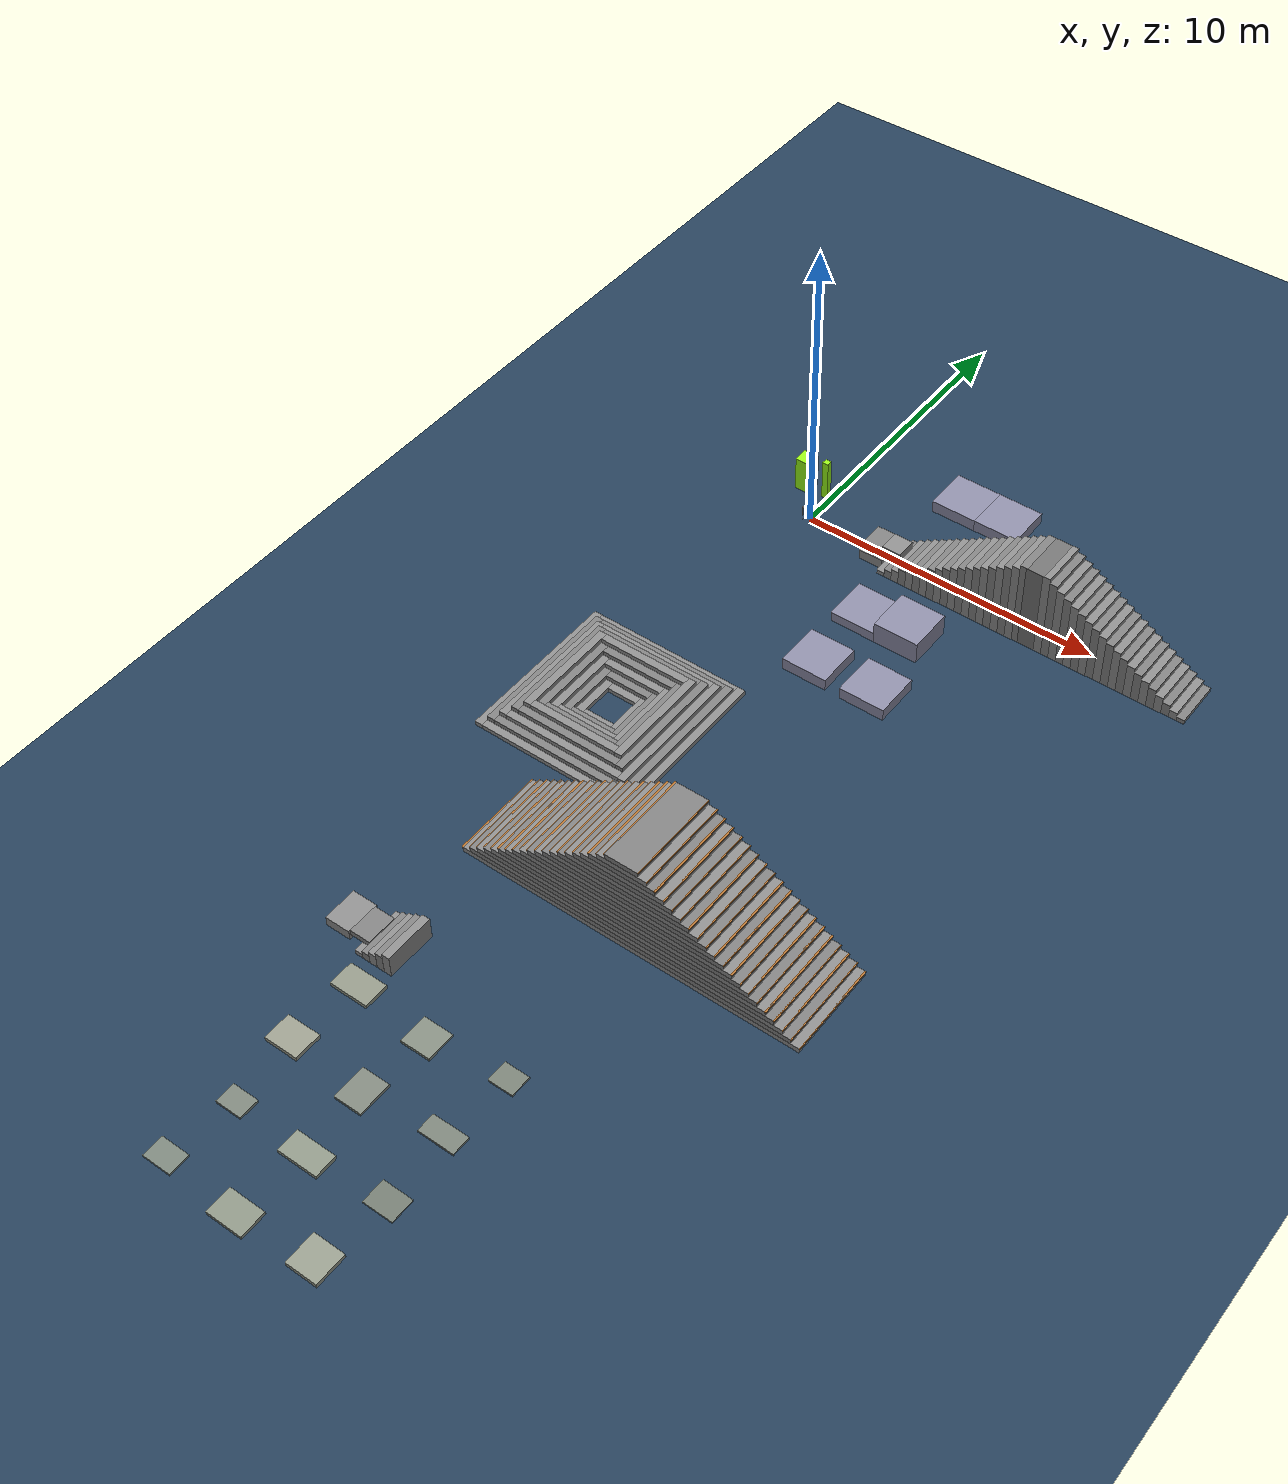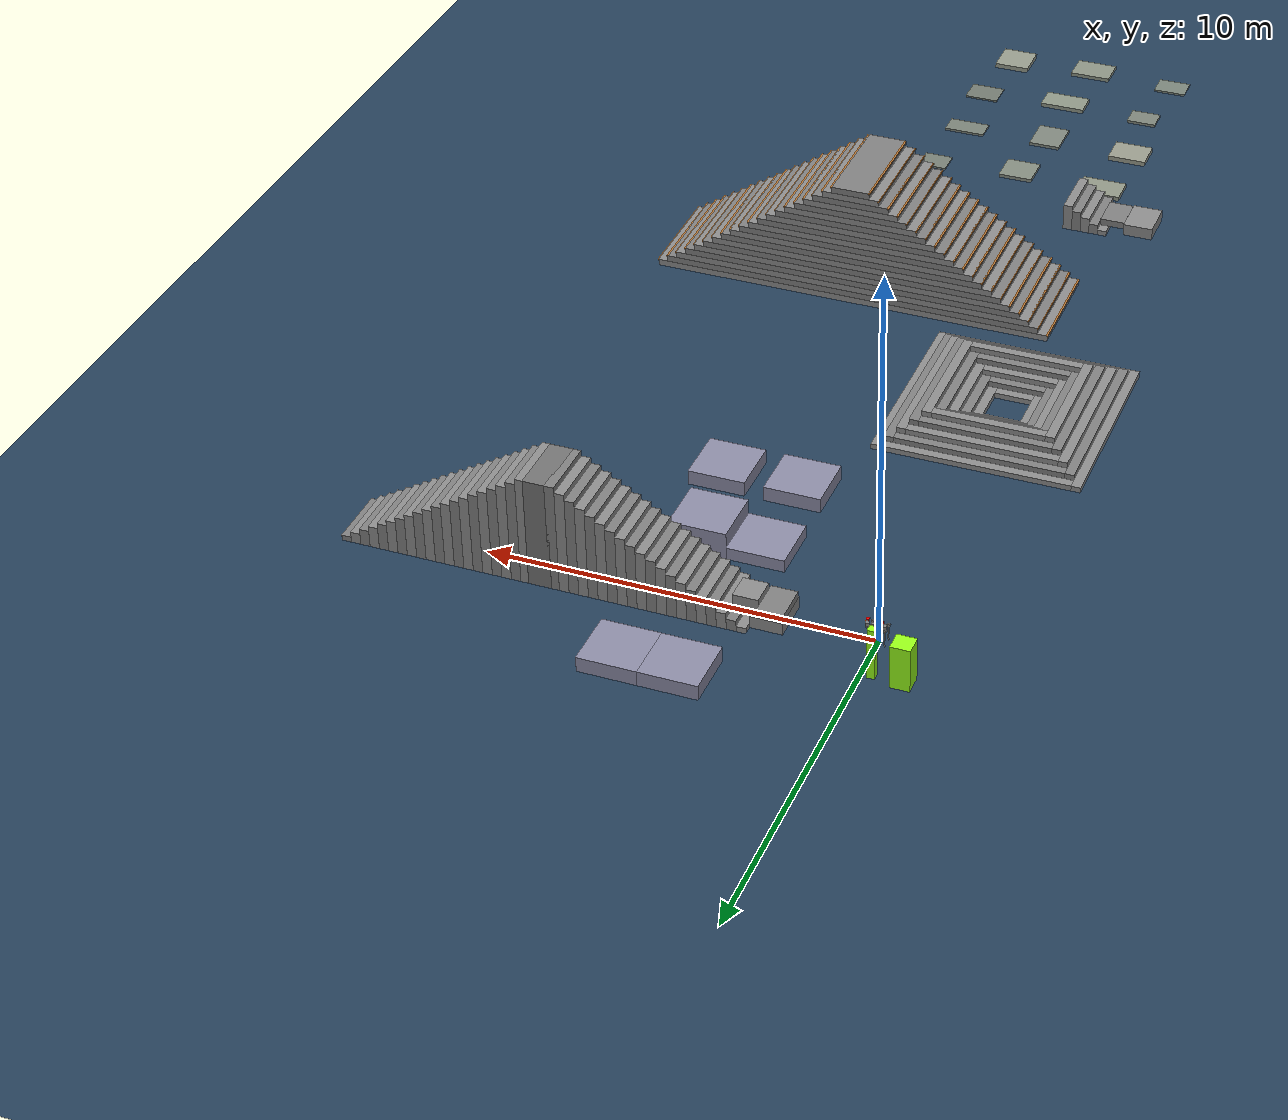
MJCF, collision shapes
<mujoco model="go2 scene">
  <include file="go2.xml"/>

  <statistic center="0 0 0.1" extent="0.8"/>

  <visual>
    <headlight diffuse="0.6 0.6 0.6" ambient="0.3 0.3 0.3" specular="0 0 0"/>
    <rgba haze="0.15 0.25 0.35 1"/>
    <global azimuth="-130" elevation="-20"/>
  </visual>

  <asset>
    <texture type="skybox" builtin="gradient" rgb1="0.3 0.5 0.7" rgb2="0 0 0" width="512" height="3072"/>
    <texture type="2d" name="groundplane" builtin="checker" mark="edge" rgb1="0.2 0.3 0.4" rgb2="0.1 0.2 0.3"
      markrgb="0.8 0.8 0.8" width="300" height="300"/>
    <material name="groundplane" texture="groundplane" texuniform="true" texrepeat="5 5" reflectance="0.2"/>
  </asset>

  <worldbody>
    <light pos="0 0 1.5" dir="0 0 -1" directional="true"/>
    <geom name="floor" size="0 0 0.05" type="plane" material="groundplane" friction="2.0 0.005 0.0001"/>

    <geom name="obst1" pos="-1.0 1.2 0.15" type="box" size="0.25 0.25 1.0" rgba="0.6 1.0 0.1 1"/>
    <geom name="obst2" pos="-0.25 1.2 0.15" type="box" size="0.1 0.1 1.2" rgba="0.6 1.0 0.1 1"/>

    <!-- Boxes group: move/rotate by changing this body's pos/euler -->
    <body name="boxes" pos="3.75 -2.5 -0.1">
      <geom name="box1" pos="0 0 0.0" type="box" size="0.75 0.75 0.4" rgba="0.55 0.55 0.65 1"/>
      <geom name="box2" pos="1.5 0 0.4" type="box" size="0.75 0.75 0.4" rgba="0.55 0.55 0.65 1"/>
    </body>

    <body name="boxes_overhang" pos="3.75 3.0 0.5">
      <geom name="box3" pos="0 0 0.0" type="box" size="0.75 0.75 0.2" rgba="0.55 0.55 0.65 1"/>
      <geom name="box4" pos="1.5 0 0.0" type="box" size="0.75 0.75 0.2" rgba="0.55 0.55 0.65 1"/>
    </body>

    <!-- Gap terrain group: two platforms with a 0.5m gap between them -->
    <body name="gap" pos="3.75 -5 0">
      <geom name="gap1" pos="0 0 0.2" type="box" size="0.75 0.75 0.2" rgba="0.55 0.55 0.65 1" friction="20.0 0.1 0.0001"/>
      <geom name="gap2" pos="2.0 0 0.2" type="box" size="0.75 0.75 0.2" rgba="0.55 0.55 0.65 1" friction="20.0 0.1 0.0001"/>
    </body>

    <!-- Concentric stairs: 0.25m treads climb a pyramid, then descend into its center -->
    <body name="pyramid_stairs" pos="0 -10 0">
      <!-- Outer pyramid: five 0.15m rises -->
      <geom name="pyramid_outer_1_left"   pos="-2.625 0 0.075" type="box" size="0.125 2.75 0.075" rgba="0.55 0.55 0.55 1" friction="3.0 0.005 0.0001"/>
      <geom name="pyramid_outer_1_right"  pos="2.625 0 0.075"  type="box" size="0.125 2.75 0.075" rgba="0.55 0.55 0.55 1" friction="3.0 0.005 0.0001"/>
      <geom name="pyramid_outer_1_front"  pos="0 -2.625 0.075" type="box" size="2.5 0.125 0.075"  rgba="0.55 0.55 0.55 1" friction="3.0 0.005 0.0001"/>
      <geom name="pyramid_outer_1_back"   pos="0 2.625 0.075"  type="box" size="2.5 0.125 0.075"  rgba="0.55 0.55 0.55 1" friction="3.0 0.005 0.0001"/>

      <geom name="pyramid_outer_2_left"   pos="-2.375 0 0.15" type="box" size="0.125 2.5 0.15" rgba="0.50 0.50 0.50 1" friction="3.0 0.005 0.0001"/>
      <geom name="pyramid_outer_2_right"  pos="2.375 0 0.15"  type="box" size="0.125 2.5 0.15" rgba="0.50 0.50 0.50 1" friction="3.0 0.005 0.0001"/>
      <geom name="pyramid_outer_2_front"  pos="0 -2.375 0.15" type="box" size="2.25 0.125 0.15" rgba="0.50 0.50 0.50 1" friction="3.0 0.005 0.0001"/>
      <geom name="pyramid_outer_2_back"   pos="0 2.375 0.15"  type="box" size="2.25 0.125 0.15" rgba="0.50 0.50 0.50 1" friction="3.0 0.005 0.0001"/>

      <geom name="pyramid_outer_3_left"   pos="-2.125 0 0.225" type="box" size="0.125 2.25 0.225" rgba="0.55 0.55 0.55 1" friction="3.0 0.005 0.0001"/>
      <geom name="pyramid_outer_3_right"  pos="2.125 0 0.225"  type="box" size="0.125 2.25 0.225" rgba="0.55 0.55 0.55 1" friction="3.0 0.005 0.0001"/>
      <geom name="pyramid_outer_3_front"  pos="0 -2.125 0.225" type="box" size="2.0 0.125 0.225"  rgba="0.55 0.55 0.55 1" friction="3.0 0.005 0.0001"/>
      <geom name="pyramid_outer_3_back"   pos="0 2.125 0.225"  type="box" size="2.0 0.125 0.225"  rgba="0.55 0.55 0.55 1" friction="3.0 0.005 0.0001"/>

      <geom name="pyramid_outer_4_left"   pos="-1.875 0 0.3" type="box" size="0.125 2.0 0.3" rgba="0.50 0.50 0.50 1" friction="3.0 0.005 0.0001"/>
      <geom name="pyramid_outer_4_right"  pos="1.875 0 0.3"  type="box" size="0.125 2.0 0.3" rgba="0.50 0.50 0.50 1" friction="3.0 0.005 0.0001"/>
      <geom name="pyramid_outer_4_front"  pos="0 -1.875 0.3" type="box" size="1.75 0.125 0.3" rgba="0.50 0.50 0.50 1" friction="3.0 0.005 0.0001"/>
      <geom name="pyramid_outer_4_back"   pos="0 1.875 0.3"  type="box" size="1.75 0.125 0.3" rgba="0.50 0.50 0.50 1" friction="3.0 0.005 0.0001"/>

      <geom name="pyramid_outer_5_left"   pos="-1.625 0 0.375" type="box" size="0.125 1.75 0.375" rgba="0.55 0.55 0.55 1" friction="3.0 0.005 0.0001"/>
      <geom name="pyramid_outer_5_right"  pos="1.625 0 0.375"  type="box" size="0.125 1.75 0.375" rgba="0.55 0.55 0.55 1" friction="3.0 0.005 0.0001"/>
      <geom name="pyramid_outer_5_front"  pos="0 -1.625 0.375" type="box" size="1.5 0.125 0.375"  rgba="0.55 0.55 0.55 1" friction="3.0 0.005 0.0001"/>
      <geom name="pyramid_outer_5_back"   pos="0 1.625 0.375"  type="box" size="1.5 0.125 0.375"  rgba="0.55 0.55 0.55 1" friction="3.0 0.005 0.0001"/>

      <!-- Inverted pyramid: five 0.15m drops toward the ground-level center -->
      <geom name="pyramid_inner_1_left"   pos="-1.375 0 0.3" type="box" size="0.125 1.5 0.3" rgba="0.50 0.50 0.50 1" friction="3.0 0.005 0.0001"/>
      <geom name="pyramid_inner_1_right"  pos="1.375 0 0.3"  type="box" size="0.125 1.5 0.3" rgba="0.50 0.50 0.50 1" friction="3.0 0.005 0.0001"/>
      <geom name="pyramid_inner_1_front"  pos="0 -1.375 0.3" type="box" size="1.25 0.125 0.3" rgba="0.50 0.50 0.50 1" friction="3.0 0.005 0.0001"/>
      <geom name="pyramid_inner_1_back"   pos="0 1.375 0.3"  type="box" size="1.25 0.125 0.3" rgba="0.50 0.50 0.50 1" friction="3.0 0.005 0.0001"/>

      <geom name="pyramid_inner_2_left"   pos="-1.125 0 0.225" type="box" size="0.125 1.25 0.225" rgba="0.55 0.55 0.55 1" friction="3.0 0.005 0.0001"/>
      <geom name="pyramid_inner_2_right"  pos="1.125 0 0.225"  type="box" size="0.125 1.25 0.225" rgba="0.55 0.55 0.55 1" friction="3.0 0.005 0.0001"/>
      <geom name="pyramid_inner_2_front"  pos="0 -1.125 0.225" type="box" size="1.0 0.125 0.225"  rgba="0.55 0.55 0.55 1" friction="3.0 0.005 0.0001"/>
      <geom name="pyramid_inner_2_back"   pos="0 1.125 0.225"  type="box" size="1.0 0.125 0.225"  rgba="0.55 0.55 0.55 1" friction="3.0 0.005 0.0001"/>

      <geom name="pyramid_inner_3_left"   pos="-0.875 0 0.15" type="box" size="0.125 1.0 0.15" rgba="0.50 0.50 0.50 1" friction="3.0 0.005 0.0001"/>
      <geom name="pyramid_inner_3_right"  pos="0.875 0 0.15"  type="box" size="0.125 1.0 0.15" rgba="0.50 0.50 0.50 1" friction="3.0 0.005 0.0001"/>
      <geom name="pyramid_inner_3_front"  pos="0 -0.875 0.15" type="box" size="0.75 0.125 0.15" rgba="0.50 0.50 0.50 1" friction="3.0 0.005 0.0001"/>
      <geom name="pyramid_inner_3_back"   pos="0 0.875 0.15"  type="box" size="0.75 0.125 0.15" rgba="0.50 0.50 0.50 1" friction="3.0 0.005 0.0001"/>

      <geom name="pyramid_inner_4_left"   pos="-0.625 0 0.075" type="box" size="0.125 0.75 0.075" rgba="0.55 0.55 0.55 1" friction="3.0 0.005 0.0001"/>
      <geom name="pyramid_inner_4_right"  pos="0.625 0 0.075"  type="box" size="0.125 0.75 0.075" rgba="0.55 0.55 0.55 1" friction="3.0 0.005 0.0001"/>
      <geom name="pyramid_inner_4_front"  pos="0 -0.625 0.075" type="box" size="0.5 0.125 0.075"  rgba="0.55 0.55 0.55 1" friction="3.0 0.005 0.0001"/>
      <geom name="pyramid_inner_4_back"   pos="0 0.625 0.075"  type="box" size="0.5 0.125 0.075"  rgba="0.55 0.55 0.55 1" friction="3.0 0.005 0.0001"/>
    </body>

    <!-- 20 steps up/down: 0.29m effective depth, 0.175m rise, 3m width -->
    <body name="bumped_stairs" pos="0 -15 0">
      <!-- Structural slabs: 0.265m riser spacing plus 0.025m bump overhang -->
      <geom name="bumped_slab_1" pos="5.5650 0 0.0875" type="box" size="5.5650 1.5 0.0875" rgba="0.55 0.55 0.55 1" friction="3.0 0.005 0.0001"/>
      <geom name="bumped_slab_2" pos="5.5650 0 0.2625" type="box" size="5.3000 1.5 0.0875" rgba="0.50 0.50 0.50 1" friction="3.0 0.005 0.0001"/>
      <geom name="bumped_slab_3" pos="5.5650 0 0.4375" type="box" size="5.0350 1.5 0.0875" rgba="0.55 0.55 0.55 1" friction="3.0 0.005 0.0001"/>
      <geom name="bumped_slab_4" pos="5.5650 0 0.6125" type="box" size="4.7700 1.5 0.0875" rgba="0.50 0.50 0.50 1" friction="3.0 0.005 0.0001"/>
      <geom name="bumped_slab_5" pos="5.5650 0 0.7875" type="box" size="4.5050 1.5 0.0875" rgba="0.55 0.55 0.55 1" friction="3.0 0.005 0.0001"/>
      <geom name="bumped_slab_6" pos="5.5650 0 0.9625" type="box" size="4.2400 1.5 0.0875" rgba="0.50 0.50 0.50 1" friction="3.0 0.005 0.0001"/>
      <geom name="bumped_slab_7" pos="5.5650 0 1.1375" type="box" size="3.9750 1.5 0.0875" rgba="0.55 0.55 0.55 1" friction="3.0 0.005 0.0001"/>
      <geom name="bumped_slab_8" pos="5.5650 0 1.3125" type="box" size="3.7100 1.5 0.0875" rgba="0.50 0.50 0.50 1" friction="3.0 0.005 0.0001"/>
      <geom name="bumped_slab_9" pos="5.5650 0 1.4875" type="box" size="3.4450 1.5 0.0875" rgba="0.55 0.55 0.55 1" friction="3.0 0.005 0.0001"/>
      <geom name="bumped_slab_10" pos="5.5650 0 1.6625" type="box" size="3.1800 1.5 0.0875" rgba="0.50 0.50 0.50 1" friction="3.0 0.005 0.0001"/>
      <geom name="bumped_slab_11" pos="5.5650 0 1.8375" type="box" size="2.9150 1.5 0.0875" rgba="0.55 0.55 0.55 1" friction="3.0 0.005 0.0001"/>
      <geom name="bumped_slab_12" pos="5.5650 0 2.0125" type="box" size="2.6500 1.5 0.0875" rgba="0.50 0.50 0.50 1" friction="3.0 0.005 0.0001"/>
      <geom name="bumped_slab_13" pos="5.5650 0 2.1875" type="box" size="2.3850 1.5 0.0875" rgba="0.55 0.55 0.55 1" friction="3.0 0.005 0.0001"/>
      <geom name="bumped_slab_14" pos="5.5650 0 2.3625" type="box" size="2.1200 1.5 0.0875" rgba="0.50 0.50 0.50 1" friction="3.0 0.005 0.0001"/>
      <geom name="bumped_slab_15" pos="5.5650 0 2.5375" type="box" size="1.8550 1.5 0.0875" rgba="0.55 0.55 0.55 1" friction="3.0 0.005 0.0001"/>
      <geom name="bumped_slab_16" pos="5.5650 0 2.7125" type="box" size="1.5900 1.5 0.0875" rgba="0.50 0.50 0.50 1" friction="3.0 0.005 0.0001"/>
      <geom name="bumped_slab_17" pos="5.5650 0 2.8875" type="box" size="1.3250 1.5 0.0875" rgba="0.55 0.55 0.55 1" friction="3.0 0.005 0.0001"/>
      <geom name="bumped_slab_18" pos="5.5650 0 3.0625" type="box" size="1.0600 1.5 0.0875" rgba="0.50 0.50 0.50 1" friction="3.0 0.005 0.0001"/>
      <geom name="bumped_slab_19" pos="5.5650 0 3.2375" type="box" size="0.7950 1.5 0.0875" rgba="0.55 0.55 0.55 1" friction="3.0 0.005 0.0001"/>
      <geom name="bumped_slab_20" pos="5.5650 0 3.4125" type="box" size="0.5300 1.5 0.0875" rgba="0.50 0.50 0.50 1" friction="3.0 0.005 0.0001"/>

      <!-- Bumps protrude 0.025m and overlap 0.025m into the top 0.04m of every riser -->
      <geom name="bumped_up_1" pos="0.0000 0 0.1550" type="box" size="0.0250 1.5 0.02" rgba="0.70 0.45 0.20 1" friction="3.0 0.005 0.0001"/>
      <geom name="bumped_up_2" pos="0.2650 0 0.3300" type="box" size="0.0250 1.5 0.02" rgba="0.70 0.45 0.20 1" friction="3.0 0.005 0.0001"/>
      <geom name="bumped_up_3" pos="0.5300 0 0.5050" type="box" size="0.0250 1.5 0.02" rgba="0.70 0.45 0.20 1" friction="3.0 0.005 0.0001"/>
      <geom name="bumped_up_4" pos="0.7950 0 0.6800" type="box" size="0.0250 1.5 0.02" rgba="0.70 0.45 0.20 1" friction="3.0 0.005 0.0001"/>
      <geom name="bumped_up_5" pos="1.0600 0 0.8550" type="box" size="0.0250 1.5 0.02" rgba="0.70 0.45 0.20 1" friction="3.0 0.005 0.0001"/>
      <geom name="bumped_up_6" pos="1.3250 0 1.0300" type="box" size="0.0250 1.5 0.02" rgba="0.70 0.45 0.20 1" friction="3.0 0.005 0.0001"/>
      <geom name="bumped_up_7" pos="1.5900 0 1.2050" type="box" size="0.0250 1.5 0.02" rgba="0.70 0.45 0.20 1" friction="3.0 0.005 0.0001"/>
      <geom name="bumped_up_8" pos="1.8550 0 1.3800" type="box" size="0.0250 1.5 0.02" rgba="0.70 0.45 0.20 1" friction="3.0 0.005 0.0001"/>
      <geom name="bumped_up_9" pos="2.1200 0 1.5550" type="box" size="0.0250 1.5 0.02" rgba="0.70 0.45 0.20 1" friction="3.0 0.005 0.0001"/>
      <geom name="bumped_up_10" pos="2.3850 0 1.7300" type="box" size="0.0250 1.5 0.02" rgba="0.70 0.45 0.20 1" friction="3.0 0.005 0.0001"/>
      <geom name="bumped_up_11" pos="2.6500 0 1.9050" type="box" size="0.0250 1.5 0.02" rgba="0.70 0.45 0.20 1" friction="3.0 0.005 0.0001"/>
      <geom name="bumped_up_12" pos="2.9150 0 2.0800" type="box" size="0.0250 1.5 0.02" rgba="0.70 0.45 0.20 1" friction="3.0 0.005 0.0001"/>
      <geom name="bumped_up_13" pos="3.1800 0 2.2550" type="box" size="0.0250 1.5 0.02" rgba="0.70 0.45 0.20 1" friction="3.0 0.005 0.0001"/>
      <geom name="bumped_up_14" pos="3.4450 0 2.4300" type="box" size="0.0250 1.5 0.02" rgba="0.70 0.45 0.20 1" friction="3.0 0.005 0.0001"/>
      <geom name="bumped_up_15" pos="3.7100 0 2.6050" type="box" size="0.0250 1.5 0.02" rgba="0.70 0.45 0.20 1" friction="3.0 0.005 0.0001"/>
      <geom name="bumped_up_16" pos="3.9750 0 2.7800" type="box" size="0.0250 1.5 0.02" rgba="0.70 0.45 0.20 1" friction="3.0 0.005 0.0001"/>
      <geom name="bumped_up_17" pos="4.2400 0 2.9550" type="box" size="0.0250 1.5 0.02" rgba="0.70 0.45 0.20 1" friction="3.0 0.005 0.0001"/>
      <geom name="bumped_up_18" pos="4.5050 0 3.1300" type="box" size="0.0250 1.5 0.02" rgba="0.70 0.45 0.20 1" friction="3.0 0.005 0.0001"/>
      <geom name="bumped_up_19" pos="4.7700 0 3.3050" type="box" size="0.0250 1.5 0.02" rgba="0.70 0.45 0.20 1" friction="3.0 0.005 0.0001"/>
      <geom name="bumped_up_20" pos="5.0350 0 3.4800" type="box" size="0.0250 1.5 0.02" rgba="0.70 0.45 0.20 1" friction="3.0 0.005 0.0001"/>

      <geom name="bumped_down_1" pos="6.0950 0 3.4800" type="box" size="0.0250 1.5 0.02" rgba="0.70 0.45 0.20 1" friction="3.0 0.005 0.0001"/>
      <geom name="bumped_down_2" pos="6.3600 0 3.3050" type="box" size="0.0250 1.5 0.02" rgba="0.70 0.45 0.20 1" friction="3.0 0.005 0.0001"/>
      <geom name="bumped_down_3" pos="6.6250 0 3.1300" type="box" size="0.0250 1.5 0.02" rgba="0.70 0.45 0.20 1" friction="3.0 0.005 0.0001"/>
      <geom name="bumped_down_4" pos="6.8900 0 2.9550" type="box" size="0.0250 1.5 0.02" rgba="0.70 0.45 0.20 1" friction="3.0 0.005 0.0001"/>
      <geom name="bumped_down_5" pos="7.1550 0 2.7800" type="box" size="0.0250 1.5 0.02" rgba="0.70 0.45 0.20 1" friction="3.0 0.005 0.0001"/>
      <geom name="bumped_down_6" pos="7.4200 0 2.6050" type="box" size="0.0250 1.5 0.02" rgba="0.70 0.45 0.20 1" friction="3.0 0.005 0.0001"/>
      <geom name="bumped_down_7" pos="7.6850 0 2.4300" type="box" size="0.0250 1.5 0.02" rgba="0.70 0.45 0.20 1" friction="3.0 0.005 0.0001"/>
      <geom name="bumped_down_8" pos="7.9500 0 2.2550" type="box" size="0.0250 1.5 0.02" rgba="0.70 0.45 0.20 1" friction="3.0 0.005 0.0001"/>
      <geom name="bumped_down_9" pos="8.2150 0 2.0800" type="box" size="0.0250 1.5 0.02" rgba="0.70 0.45 0.20 1" friction="3.0 0.005 0.0001"/>
      <geom name="bumped_down_10" pos="8.4800 0 1.9050" type="box" size="0.0250 1.5 0.02" rgba="0.70 0.45 0.20 1" friction="3.0 0.005 0.0001"/>
      <geom name="bumped_down_11" pos="8.7450 0 1.7300" type="box" size="0.0250 1.5 0.02" rgba="0.70 0.45 0.20 1" friction="3.0 0.005 0.0001"/>
      <geom name="bumped_down_12" pos="9.0100 0 1.5550" type="box" size="0.0250 1.5 0.02" rgba="0.70 0.45 0.20 1" friction="3.0 0.005 0.0001"/>
      <geom name="bumped_down_13" pos="9.2750 0 1.3800" type="box" size="0.0250 1.5 0.02" rgba="0.70 0.45 0.20 1" friction="3.0 0.005 0.0001"/>
      <geom name="bumped_down_14" pos="9.5400 0 1.2050" type="box" size="0.0250 1.5 0.02" rgba="0.70 0.45 0.20 1" friction="3.0 0.005 0.0001"/>
      <geom name="bumped_down_15" pos="9.8050 0 1.0300" type="box" size="0.0250 1.5 0.02" rgba="0.70 0.45 0.20 1" friction="3.0 0.005 0.0001"/>
      <geom name="bumped_down_16" pos="10.0700 0 0.8550" type="box" size="0.0250 1.5 0.02" rgba="0.70 0.45 0.20 1" friction="3.0 0.005 0.0001"/>
      <geom name="bumped_down_17" pos="10.3350 0 0.6800" type="box" size="0.0250 1.5 0.02" rgba="0.70 0.45 0.20 1" friction="3.0 0.005 0.0001"/>
      <geom name="bumped_down_18" pos="10.6000 0 0.5050" type="box" size="0.0250 1.5 0.02" rgba="0.70 0.45 0.20 1" friction="3.0 0.005 0.0001"/>
      <geom name="bumped_down_19" pos="10.8650 0 0.3300" type="box" size="0.0250 1.5 0.02" rgba="0.70 0.45 0.20 1" friction="3.0 0.005 0.0001"/>
      <geom name="bumped_down_20" pos="11.1300 0 0.1550" type="box" size="0.0250 1.5 0.02" rgba="0.70 0.45 0.20 1" friction="3.0 0.005 0.0001"/>
    </body>

    <!-- Five-step stairs with the lower box and moved middle box only -->
    <body name="short_box_stairs" pos="0 -20 0">
      <geom name="short_pre1" pos="-0.84 0 0.165" type="box" size="0.41 0.55 0.165" rgba="0.55 0.55 0.55 1" friction="3.0 0.005 0.0001"/>
      <geom name="short_pre2" pos="-0.09 0 0.245" type="box" size="0.34 0.49 0.095" rgba="0.50 0.50 0.50 1" friction="3.0 0.005 0.0001"/>

      <!-- First five steps from the standard stairs terrain -->
      <geom name="short_stair1" pos="0.125 0 0.075" type="box" size="0.125 0.8 0.075" rgba="0.55 0.55 0.55 1" friction="3.0 0.005 0.0001"/>
      <geom name="short_stair2" pos="0.375 0 0.15" type="box" size="0.125 0.8 0.15" rgba="0.50 0.50 0.50 1" friction="3.0 0.005 0.0001"/>
      <geom name="short_stair3" pos="0.625 0 0.225" type="box" size="0.125 0.8 0.225" rgba="0.55 0.55 0.55 1" friction="3.0 0.005 0.0001"/>
      <geom name="short_stair4" pos="0.875 0 0.3" type="box" size="0.125 0.8 0.3" rgba="0.50 0.50 0.50 1" friction="3.0 0.005 0.0001"/>
      <geom name="short_stair5" pos="1.125 0 0.375" type="box" size="0.125 0.8 0.375" rgba="0.55 0.55 0.55 1" friction="3.0 0.005 0.0001"/>
    </body>

    <!-- Sparse low platforms similar to discrete/grid terrain used in RL -->
    <body name="discrete_grid" pos="0 -25 0">
      <geom name="discrete_box_01" pos="0.45 -3.10 0.030" type="box" size="0.46 0.34 0.030" rgba="0.48 0.52 0.48 1" friction="3.0 0.005 0.0001"/>
      <geom name="discrete_box_02" pos="2.95 -3.25 0.055" type="box" size="0.58 0.42 0.055" rgba="0.55 0.58 0.52 1" friction="3.0 0.005 0.0001"/>
      <geom name="discrete_box_03" pos="5.35 -3.05 0.070" type="box" size="0.50 0.50 0.070" rgba="0.59 0.61 0.55 1" friction="3.0 0.005 0.0001"/>
      <geom name="discrete_box_04" pos="0.75 -0.95 0.040" type="box" size="0.42 0.32 0.040" rgba="0.49 0.52 0.48 1" friction="3.0 0.005 0.0001"/>
      <geom name="discrete_box_05" pos="3.20 -1.05 0.060" type="box" size="0.64 0.36 0.060" rgba="0.56 0.59 0.53 1" friction="3.0 0.005 0.0001"/>
      <geom name="discrete_box_06" pos="5.65 -0.85 0.025" type="box" size="0.48 0.38 0.025" rgba="0.45 0.48 0.44 1" friction="3.0 0.005 0.0001"/>
      <geom name="discrete_box_07" pos="0.55 1.25 0.070" type="box" size="0.54 0.44 0.070" rgba="0.60 0.61 0.55 1" friction="3.0 0.005 0.0001"/>
      <geom name="discrete_box_08" pos="3.05 1.10 0.045" type="box" size="0.44 0.54 0.045" rgba="0.50 0.53 0.49 1" friction="3.0 0.005 0.0001"/>
      <geom name="discrete_box_09" pos="5.50 1.35 0.035" type="box" size="0.58 0.30 0.035" rgba="0.48 0.51 0.47 1" friction="3.0 0.005 0.0001"/>
      <geom name="discrete_box_10" pos="0.80 3.45 0.065" type="box" size="0.62 0.40 0.065" rgba="0.57 0.59 0.53 1" friction="3.0 0.005 0.0001"/>
      <geom name="discrete_box_11" pos="3.30 3.25 0.050" type="box" size="0.48 0.46 0.050" rgba="0.52 0.55 0.50 1" friction="3.0 0.005 0.0001"/>
      <geom name="discrete_box_12" pos="5.75 3.55 0.030" type="box" size="0.40 0.34 0.030" rgba="0.47 0.50 0.46 1" friction="3.0 0.005 0.0001"/>
    </body>

    <!-- Stairs group: move/rotate by changing this body's pos/euler -->
    <body name="stairs" pos="3.0 0.0 0">
      <!-- Boxes before stairs -->
      <geom name="pre1" pos="-0.41 0 0.165" type="box" size="0.41 0.55 0.165" rgba="0.55 0.55 0.55 1" friction="3.0 0.005 0.0001"/>
      <geom name="pre2" pos="-0.48 0 0.425" type="box" size="0.34 0.49 0.095" rgba="0.50 0.50 0.50 1" friction="3.0 0.005 0.0001"/>
      <geom name="pre3" pos="0.185 0 0.51" type="box" size="0.325 0.35 0.18" rgba="0.55 0.55 0.55 1" friction="3.0 0.005 0.0001"/>

      <!-- Upstairs: each step 0.25m deep, 0.15m rise -->
      <geom name="stair1" pos="0.125 0 0.075"   type="box" size="0.125 0.8 0.075"   rgba="0.55 0.55 0.55 1" friction="3.0 0.005 0.0001"/>
      <geom name="stair2" pos="0.375 0 0.15"   type="box" size="0.125 0.8 0.15"   rgba="0.50 0.50 0.50 1" friction="3.0 0.005 0.0001"/>
      <geom name="stair3" pos="0.625 0 0.225"   type="box" size="0.125 0.8 0.225"   rgba="0.55 0.55 0.55 1" friction="3.0 0.005 0.0001"/>
      <geom name="stair4" pos="0.875 0 0.3"   type="box" size="0.125 0.8 0.3"   rgba="0.50 0.50 0.50 1" friction="3.0 0.005 0.0001"/>
      <geom name="stair5" pos="1.125 0 0.375"   type="box" size="0.125 0.8 0.375"   rgba="0.55 0.55 0.55 1" friction="3.0 0.005 0.0001"/>
      <geom name="stair6" pos="1.375 0 0.45"   type="box" size="0.125 0.8 0.45"   rgba="0.50 0.50 0.50 1" friction="3.0 0.005 0.0001"/>
      <geom name="stair7" pos="1.625 0 0.525"   type="box" size="0.125 0.8 0.525"   rgba="0.55 0.55 0.55 1" friction="3.0 0.005 0.0001"/>
      <geom name="stair8" pos="1.875 0 0.6"   type="box" size="0.125 0.8 0.6"   rgba="0.50 0.50 0.50 1" friction="3.0 0.005 0.0001"/>
      <geom name="stair9" pos="2.125 0 0.675"   type="box" size="0.125 0.8 0.675"   rgba="0.55 0.55 0.55 1" friction="3.0 0.005 0.0001"/>
      <geom name="stair10" pos="2.375 0 0.75"   type="box" size="0.125 0.8 0.75"   rgba="0.50 0.50 0.50 1" friction="3.0 0.005 0.0001"/>
      <geom name="stair11" pos="2.625 0 0.825"   type="box" size="0.125 0.8 0.825"   rgba="0.55 0.55 0.55 1" friction="3.0 0.005 0.0001"/>
      <geom name="stair12" pos="2.875 0 0.9"   type="box" size="0.125 0.8 0.9"   rgba="0.50 0.50 0.50 1" friction="3.0 0.005 0.0001"/>
      <geom name="stair13" pos="3.125 0 0.975"   type="box" size="0.125 0.8 0.975"   rgba="0.55 0.55 0.55 1" friction="3.0 0.005 0.0001"/>
      <geom name="stair14" pos="3.375 0 1.05"   type="box" size="0.125 0.8 1.05"   rgba="0.50 0.50 0.50 1" friction="3.0 0.005 0.0001"/>
      <geom name="stair15" pos="3.625 0 1.125"   type="box" size="0.125 0.8 1.125"   rgba="0.55 0.55 0.55 1" friction="3.0 0.005 0.0001"/>
      <geom name="stair16" pos="3.875 0 1.2"   type="box" size="0.125 0.8 1.2"   rgba="0.50 0.50 0.50 1" friction="3.0 0.005 0.0001"/>
      <geom name="stair17" pos="4.125 0 1.275"   type="box" size="0.125 0.8 1.275"   rgba="0.55 0.55 0.55 1" friction="3.0 0.005 0.0001"/>
      <geom name="stair18" pos="4.375 0 1.35"   type="box" size="0.125 0.8 1.35"   rgba="0.50 0.50 0.50 1" friction="3.0 0.005 0.0001"/>
      <geom name="stair19" pos="4.625 0 1.425"   type="box" size="0.125 0.8 1.425"   rgba="0.55 0.55 0.55 1" friction="3.0 0.005 0.0001"/>
      <geom name="stair20" pos="4.875 0 1.5"   type="box" size="0.125 0.8 1.5"   rgba="0.50 0.50 0.50 1" friction="3.0 0.005 0.0001"/>

      <!-- Landing platform at top (0.5m deep) -->
      <geom name="landing" pos="5.25 0 1.5"    type="box" size="0.3 0.8 1.5"    rgba="0.45 0.45 0.45 1" friction="3.0 0.005 0.0001"/>

      <!-- Downstairs: mirror of upstairs, descending back to ground -->
      <geom name="down1"  pos="5.625 0 1.5"   type="box" size="0.125 0.8 1.5"   rgba="0.55 0.55 0.55 1" friction="3.0 0.005 0.0001"/>
      <geom name="down2"  pos="5.875 0 1.425"   type="box" size="0.125 0.8 1.425"   rgba="0.50 0.50 0.50 1" friction="3.0 0.005 0.0001"/>
      <geom name="down3"  pos="6.125 0 1.35"   type="box" size="0.125 0.8 1.35"   rgba="0.55 0.55 0.55 1" friction="3.0 0.005 0.0001"/>
      <geom name="down4"  pos="6.375 0 1.275"   type="box" size="0.125 0.8 1.275"   rgba="0.50 0.50 0.50 1" friction="3.0 0.005 0.0001"/>
      <geom name="down5"  pos="6.625 0 1.2"   type="box" size="0.125 0.8 1.2"   rgba="0.55 0.55 0.55 1" friction="3.0 0.005 0.0001"/>
      <geom name="down6"  pos="6.875 0 1.125"   type="box" size="0.125 0.8 1.125"   rgba="0.50 0.50 0.50 1" friction="3.0 0.005 0.0001"/>
      <geom name="down7"  pos="7.125 0 1.05"   type="box" size="0.125 0.8 1.05"   rgba="0.55 0.55 0.55 1" friction="3.0 0.005 0.0001"/>
      <geom name="down8"  pos="7.375 0 0.975"   type="box" size="0.125 0.8 0.975"   rgba="0.50 0.50 0.50 1" friction="3.0 0.005 0.0001"/>
      <geom name="down9"  pos="7.625 0 0.9"   type="box" size="0.125 0.8 0.9"   rgba="0.55 0.55 0.55 1" friction="3.0 0.005 0.0001"/>
      <geom name="down10"  pos="7.875 0 0.825"   type="box" size="0.125 0.8 0.825"   rgba="0.50 0.50 0.50 1" friction="3.0 0.005 0.0001"/>
      <geom name="down11"  pos="8.125 0 0.75"   type="box" size="0.125 0.8 0.75"   rgba="0.55 0.55 0.55 1" friction="3.0 0.005 0.0001"/>
      <geom name="down12"  pos="8.375 0 0.675"   type="box" size="0.125 0.8 0.675"   rgba="0.50 0.50 0.50 1" friction="3.0 0.005 0.0001"/>
      <geom name="down13"  pos="8.625 0 0.6"   type="box" size="0.125 0.8 0.6"   rgba="0.55 0.55 0.55 1" friction="3.0 0.005 0.0001"/>
      <geom name="down14"  pos="8.875 0 0.525"   type="box" size="0.125 0.8 0.525"   rgba="0.50 0.50 0.50 1" friction="3.0 0.005 0.0001"/>
      <geom name="down15"  pos="9.125 0 0.45"   type="box" size="0.125 0.8 0.45"   rgba="0.55 0.55 0.55 1" friction="3.0 0.005 0.0001"/>
      <geom name="down16"  pos="9.375 0 0.375"   type="box" size="0.125 0.8 0.375"   rgba="0.50 0.50 0.50 1" friction="3.0 0.005 0.0001"/>
      <geom name="down17"  pos="9.625 0 0.3"   type="box" size="0.125 0.8 0.3"   rgba="0.55 0.55 0.55 1" friction="3.0 0.005 0.0001"/>
      <geom name="down18"  pos="9.875 0 0.225"   type="box" size="0.125 0.8 0.225"   rgba="0.50 0.50 0.50 1" friction="3.0 0.005 0.0001"/>
      <geom name="down19"  pos="10.125 0 0.15"   type="box" size="0.125 0.8 0.15"   rgba="0.55 0.55 0.55 1" friction="3.0 0.005 0.0001"/>
      <geom name="down20"  pos="10.375 0 0.075"   type="box" size="0.125 0.8 0.075"   rgba="0.50 0.50 0.50 1" friction="3.0 0.005 0.0001"/>
    </body>
  </worldbody>
</mujoco>

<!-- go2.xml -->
<mujoco model="go2">
  <compiler angle="radian" meshdir="assets" autolimits="true" />

  <option cone="elliptic" impratio="100" />

  <default>
    <default class="go2">
      <geom friction="0.4" margin="0.001" condim="1"/>
      <joint axis="0 1 0" damping="0.1" armature="0.01" frictionloss="0.2"/>
      <motor ctrlrange="-23.7 23.7"/>
      <default class="abduction">
        <joint axis="1 0 0" range="-1.0472 1.0472"/>
      </default>
      <default class="hip">
        <default class="front_hip">
          <joint range="-1.5708 3.4907"/>
        </default>
        <default class="back_hip">
          <joint range="-0.5236 4.5379"/>
        </default>
      </default>
      <default class="knee">
        <joint range="-2.7227 -0.83776"/>
        <motor ctrlrange="-45.43 45.43"/>
      </default>
      <default class="visual">
        <geom type="mesh" contype="0" conaffinity="0" group="2"/>
      </default>
      <default class="collision">
        <geom group="3"/>
        <default class="foot">
          <geom size="0.022" pos="-0.002 0 -0.213" priority="1" condim="6"
            friction="0.4 0.02 0.01"/>
        </default>
      </default>
    </default>
  </default>

  <asset>
    <material name="metal" rgba=".9 .95 .95 1" />
    <material name="black" rgba="0 0 0 1" />
    <material name="white" rgba="1 1 1 1" />
    <material name="gray" rgba="0.671705 0.692426 0.774270 1" />

    <mesh file="base_0.obj" />
    <mesh file="base_1.obj" />
    <mesh file="base_2.obj" />
    <mesh file="base_3.obj" />
    <mesh file="base_4.obj" />
    <mesh file="hip_0.obj" />
    <mesh file="hip_1.obj" />
    <mesh file="thigh_0.obj" />
    <mesh file="thigh_1.obj" />
    <mesh file="thigh_mirror_0.obj" />
    <mesh file="thigh_mirror_1.obj" />
    <mesh file="calf_0.obj" />
    <mesh file="calf_1.obj" />
    <mesh file="calf_mirror_0.obj" />
    <mesh file="calf_mirror_1.obj" />
    <mesh file="foot.obj" />
  </asset>

  <worldbody>
    <body name="base_link" pos="0 0 0.445" childclass="go2">
      <inertial pos="0.021112 0 -0.005366" quat="-0.000543471 0.713435 -0.00173769 0.700719"
        mass="8.921"
        diaginertia="0.107027 0.0980771 0.0244531" />
      <freejoint />
      <geom mesh="base_0" material="black" class="visual" />
      <geom mesh="base_1" material="black" class="visual" />
      <geom mesh="base_2" material="black" class="visual" />
      <geom mesh="base_3" material="white" class="visual" />
      <geom mesh="base_4" material="gray" class="visual" />
      <geom size="0.1881 0.04675 0.057" type="box" class="collision" />
      <geom size="0.05 0.045" pos="0.285 0 0.01" type="cylinder" class="collision" />
      <geom size="0.047" pos="0.293 0 -0.06" class="collision" />
      <!-- body_box: matches crouch teacher cfg (full size 0.075 0.075 0.05 -> half-extents) -->
      <geom name="body_box" type="box" size="0.0375 0.0375 0.025" pos="0.275 0 0.149"
        class="collision" rgba="1 0 0 1" group="2"/>
      <!-- body_box2: matches crouch teacher cfg (full size 0.1 0.1 0.1 -> half-extents) -->
      <geom name="body_box2" type="box" size="0.05 0.05 0.05" pos="-0.05 0 0.1"
        class="collision" rgba="1 0 0 1" group="2"/>
      <site name="imu" pos="-0.02557 0 0.04232" />
      <site name="lidar" pos="0.275 0 0.149" quat="0 1 0 0" rgba="1 0 0 1" size="0.005" group="5"/>
      <camera name="d435i_camera" pos="0.33 0 0.08" euler="0 -20.2 48.7"/>
      <!-- D435i camera marker (cylinder aligned with camera Z-axis) -->
      <site name="d435i_marker" pos="0.33 0 0.08" euler="0 -20.2 48.7"
            type="cylinder" size="0.008 0.015" rgba="1 0.3 0 0.9" group="0"/>
      <body name="FL_hip" pos="0.1934 0.0465 0">
        <inertial pos="-0.0054 0.00194 -0.000105" quat="0.497014 0.499245 0.505462 0.498237"
          mass="0.678"
          diaginertia="0.00088403 0.000596003 0.000479967" />
        <joint name="FL_hip_joint" class="abduction" />
        <geom mesh="hip_0" material="metal" class="visual" />
        <geom mesh="hip_1" material="gray" class="visual" />
        <geom size="0.046 0.02" pos="0 0.08 0" quat="1 1 0 0" type="cylinder" class="collision" />
        <body name="FL_thigh" pos="0 0.0955 0">
          <inertial pos="-0.00374 -0.0223 -0.0327" quat="0.829533 0.0847635 -0.0200632 0.551623"
            mass="1.152"
            diaginertia="0.00594973 0.00584149 0.000878787" />
          <joint name="FL_thigh_joint" class="front_hip" />
          <geom mesh="thigh_0" material="metal" class="visual" />
          <geom mesh="thigh_1" material="gray" class="visual" />
          <geom size="0.1065 0.01225 0.017" pos="0 0 -0.1065" quat="0.707107 0 0.707107 0"
            type="box" class="collision" />
          <body name="FL_calf" pos="0 0 -0.213">
            <inertial pos="0.00629595 -0.000622121 -0.141417"
              quat="0.710672 0.00154099 -0.00450087 0.703508"
              mass="0.241352" diaginertia="0.0014901 0.00146356 5.31397e-05" />
            <joint name="FL_calf_joint" class="knee" />
            <geom mesh="calf_0" material="gray" class="visual" />
            <geom mesh="calf_1" material="black" class="visual" />
            <geom size="0.012 0.06" pos="0.008 0 -0.06" quat="0.994493 0 -0.104807 0"
              type="cylinder" class="collision" />
            <geom size="0.011 0.0325" pos="0.02 0 -0.148" quat="0.999688 0 0.0249974 0"
              type="cylinder" class="collision" />
            <geom pos="0 0 -0.213" mesh="foot" class="visual" material="black" />
            <geom name="FL" class="foot" />
            <body name="FL_foot" pos="0 0 -0.213" />
          </body>
        </body>
      </body>
      <body name="FR_hip" pos="0.1934 -0.0465 0">
        <inertial pos="-0.0054 -0.00194 -0.000105" quat="0.498237 0.505462 0.499245 0.497014"
          mass="0.678"
          diaginertia="0.00088403 0.000596003 0.000479967" />
        <joint name="FR_hip_joint" class="abduction" />
        <geom mesh="hip_0" material="metal" class="visual" quat="4.63268e-05 1 0 0" />
        <geom mesh="hip_1" material="gray" class="visual" quat="4.63268e-05 1 0 0" />
        <geom size="0.046 0.02" pos="0 -0.08 0" quat="0.707107 0.707107 0 0" type="cylinder"
          class="collision" />
        <body name="FR_thigh" pos="0 -0.0955 0">
          <inertial pos="-0.00374 0.0223 -0.0327" quat="0.551623 -0.0200632 0.0847635 0.829533"
            mass="1.152"
            diaginertia="0.00594973 0.00584149 0.000878787" />
          <joint name="FR_thigh_joint" class="front_hip" />
          <geom mesh="thigh_mirror_0" material="metal" class="visual" />
          <geom mesh="thigh_mirror_1" material="gray" class="visual" />
          <geom size="0.1065 0.01225 0.017" pos="0 0 -0.1065" quat="0.707107 0 0.707107 0"
            type="box" class="collision" />
          <body name="FR_calf" pos="0 0 -0.213">
            <inertial pos="0.00629595 0.000622121 -0.141417"
              quat="0.703508 -0.00450087 0.00154099 0.710672"
              mass="0.241352" diaginertia="0.0014901 0.00146356 5.31397e-05" />
            <joint name="FR_calf_joint" class="knee" />
            <geom mesh="calf_mirror_0" material="gray" class="visual" />
            <geom mesh="calf_mirror_1" material="black" class="visual" />
            <geom size="0.013 0.06" pos="0.01 0 -0.06" quat="0.995004 0 -0.0998334 0"
              type="cylinder" class="collision" />
            <geom size="0.011 0.0325" pos="0.02 0 -0.148" quat="0.999688 0 0.0249974 0"
              type="cylinder" class="collision" />
            <geom pos="0 0 -0.213" mesh="foot" class="visual" material="black" />
            <geom name="FR" class="foot" />
            <body name="FR_foot" pos="0 0 -0.213" />
          </body>
        </body>
      </body>
      <body name="RL_hip" pos="-0.1934 0.0465 0">
        <inertial pos="0.0054 0.00194 -0.000105" quat="0.505462 0.498237 0.497014 0.499245"
          mass="0.678"
          diaginertia="0.00088403 0.000596003 0.000479967" />
        <joint name="RL_hip_joint" class="abduction" />
        <geom mesh="hip_0" material="metal" class="visual" quat="4.63268e-05 0 1 0" />
        <geom mesh="hip_1" material="gray" class="visual" quat="4.63268e-05 0 1 0" />
        <geom size="0.046 0.02" pos="0 0.08 0" quat="0.707107 0.707107 0 0" type="cylinder"
          class="collision" />
        <body name="RL_thigh" pos="0 0.0955 0">
          <inertial pos="-0.00374 -0.0223 -0.0327" quat="0.829533 0.0847635 -0.0200632 0.551623"
            mass="1.152"
            diaginertia="0.00594973 0.00584149 0.000878787" />
          <joint name="RL_thigh_joint" class="back_hip" />
          <geom mesh="thigh_0" material="metal" class="visual" />
          <geom mesh="thigh_1" material="gray" class="visual" />
          <geom size="0.1065 0.01225 0.017" pos="0 0 -0.1065" quat="0.707107 0 0.707107 0"
            type="box" class="collision" />
          <body name="RL_calf" pos="0 0 -0.213">
            <inertial pos="0.00629595 -0.000622121 -0.141417"
              quat="0.710672 0.00154099 -0.00450087 0.703508"
              mass="0.241352" diaginertia="0.0014901 0.00146356 5.31397e-05" />
            <joint name="RL_calf_joint" class="knee" />
            <geom mesh="calf_0" material="gray" class="visual" />
            <geom mesh="calf_1" material="black" class="visual" />
            <geom size="0.013 0.06" pos="0.01 0 -0.06" quat="0.995004 0 -0.0998334 0"
              type="cylinder" class="collision" />
            <geom size="0.011 0.0325" pos="0.02 0 -0.148" quat="0.999688 0 0.0249974 0"
              type="cylinder" class="collision" />
            <geom pos="0 0 -0.213" mesh="foot" class="visual" material="black" />
            <geom name="RL" class="foot" />
            <body name="RL_foot" pos="0 0 -0.213" />
          </body>
        </body>
      </body>
      <body name="RR_hip" pos="-0.1934 -0.0465 0">
        <inertial pos="0.0054 -0.00194 -0.000105" quat="0.499245 0.497014 0.498237 0.505462"
          mass="0.678"
          diaginertia="0.00088403 0.000596003 0.000479967" />
        <joint name="RR_hip_joint" class="abduction" />
        <geom mesh="hip_0" material="metal" class="visual"
          quat="2.14617e-09 4.63268e-05 4.63268e-05 -1" />
        <geom mesh="hip_1" material="gray" class="visual"
          quat="2.14617e-09 4.63268e-05 4.63268e-05 -1" />
        <geom size="0.046 0.02" pos="0 -0.08 0" quat="0.707107 0.707107 0 0" type="cylinder"
          class="collision" />
        <body name="RR_thigh" pos="0 -0.0955 0">
          <inertial pos="-0.00374 0.0223 -0.0327" quat="0.551623 -0.0200632 0.0847635 0.829533"
            mass="1.152"
            diaginertia="0.00594973 0.00584149 0.000878787" />
          <joint name="RR_thigh_joint" class="back_hip" />
          <geom mesh="thigh_mirror_0" material="metal" class="visual" />
          <geom mesh="thigh_mirror_1" material="gray" class="visual" />
          <geom size="0.1065 0.01225 0.017" pos="0 0 -0.1065" quat="0.707107 0 0.707107 0"
            type="box" class="collision" />
          <body name="RR_calf" pos="0 0 -0.213">
            <inertial pos="0.00629595 0.000622121 -0.141417"
              quat="0.703508 -0.00450087 0.00154099 0.710672"
              mass="0.241352" diaginertia="0.0014901 0.00146356 5.31397e-05" />
            <joint name="RR_calf_joint" class="knee" />
            <geom mesh="calf_mirror_0" material="gray" class="visual" />
            <geom mesh="calf_mirror_1" material="black" class="visual" />
            <geom size="0.013 0.06" pos="0.01 0 -0.06" quat="0.995004 0 -0.0998334 0"
              type="cylinder" class="collision" />
            <geom size="0.011 0.0325" pos="0.02 0 -0.148" quat="0.999688 0 0.0249974 0"
              type="cylinder" class="collision" />
            <geom pos="0 0 -0.213" mesh="foot" class="visual" material="black" />
            <geom name="RR" class="foot" />
            <body name="RR_foot" pos="0 0 -0.213" />
          </body>
        </body>
      </body>
    </body>
  </worldbody>

  <actuator>
    <motor class="abduction" name="FR_hip" joint="FR_hip_joint" />
    <motor class="hip" name="FR_thigh" joint="FR_thigh_joint" />
    <motor class="knee" name="FR_calf" joint="FR_calf_joint" />
    <motor class="abduction" name="FL_hip" joint="FL_hip_joint" />
    <motor class="hip" name="FL_thigh" joint="FL_thigh_joint" />
    <motor class="knee" name="FL_calf" joint="FL_calf_joint" />
    <motor class="abduction" name="RR_hip" joint="RR_hip_joint" />
    <motor class="hip" name="RR_thigh" joint="RR_thigh_joint" />
    <motor class="knee" name="RR_calf" joint="RR_calf_joint" />
    <motor class="abduction" name="RL_hip" joint="RL_hip_joint" />
    <motor class="hip" name="RL_thigh" joint="RL_thigh_joint" />
    <motor class="knee" name="RL_calf" joint="RL_calf_joint" />
  </actuator>

  <sensor>
    <jointpos name="FR_hip_pos" joint="FR_hip_joint" />
    <jointpos name="FR_thigh_pos" joint="FR_thigh_joint" />
    <jointpos name="FR_calf_pos" joint="FR_calf_joint" />
    <jointpos name="FL_hip_pos" joint="FL_hip_joint" />
    <jointpos name="FL_thigh_pos" joint="FL_thigh_joint" />
    <jointpos name="FL_calf_pos" joint="FL_calf_joint" />
    <jointpos name="RR_hip_pos" joint="RR_hip_joint" />
    <jointpos name="RR_thigh_pos" joint="RR_thigh_joint" />
    <jointpos name="RR_calf_pos" joint="RR_calf_joint" />
    <jointpos name="RL_hip_pos" joint="RL_hip_joint" />
    <jointpos name="RL_thigh_pos" joint="RL_thigh_joint" />
    <jointpos name="RL_calf_pos" joint="RL_calf_joint" />

    <jointvel name="FR_hip_vel" joint="FR_hip_joint" />
    <jointvel name="FR_thigh_vel" joint="FR_thigh_joint" />
    <jointvel name="FR_calf_vel" joint="FR_calf_joint" />
    <jointvel name="FL_hip_vel" joint="FL_hip_joint" />
    <jointvel name="FL_thigh_vel" joint="FL_thigh_joint" />
    <jointvel name="FL_calf_vel" joint="FL_calf_joint" />
    <jointvel name="RR_hip_vel" joint="RR_hip_joint" />
    <jointvel name="RR_thigh_vel" joint="RR_thigh_joint" />
    <jointvel name="RR_calf_vel" joint="RR_calf_joint" />
    <jointvel name="RL_hip_vel" joint="RL_hip_joint" />
    <jointvel name="RL_thigh_vel" joint="RL_thigh_joint" />
    <jointvel name="RL_calf_vel" joint="RL_calf_joint" />

    <jointactuatorfrc name="FR_hip_torque" joint="FR_hip_joint" noise="0.01" />
    <jointactuatorfrc name="FR_thigh_torque" joint="FR_thigh_joint" noise="0.01" />
    <jointactuatorfrc name="FR_calf_torque" joint="FR_calf_joint" noise="0.01" />
    <jointactuatorfrc name="FL_hip_torque" joint="FL_hip_joint" noise="0.01" />
    <jointactuatorfrc name="FL_thigh_torque" joint="FL_thigh_joint" noise="0.01" />
    <jointactuatorfrc name="FL_calf_torque" joint="FL_calf_joint" noise="0.01" />
    <jointactuatorfrc name="RR_hip_torque" joint="RR_hip_joint" noise="0.01" />
    <jointactuatorfrc name="RR_thigh_torque" joint="RR_thigh_joint" noise="0.01" />
    <jointactuatorfrc name="RR_calf_torque" joint="RR_calf_joint" noise="0.01" />
    <jointactuatorfrc name="RL_hip_torque" joint="RL_hip_joint" noise="0.01" />
    <jointactuatorfrc name="RL_thigh_torque" joint="RL_thigh_joint" noise="0.01" />
    <jointactuatorfrc name="RL_calf_torque" joint="RL_calf_joint" noise="0.01" />

    <framequat name="imu_quat" objtype="site" objname="imu" />
    <gyro name="imu_gyro" site="imu" />
    <accelerometer name="imu_acc" site="imu" />

    <framepos name="frame_pos" objtype="site" objname="imu" />
    <framelinvel name="frame_vel" objtype="site" objname="imu" />
  </sensor>

  <keyframe>
    <key name="home" qpos="0 0 0.27 1 0 0 0 0 0.9 -1.8 0 0.9 -1.8 0 0.9 -1.8 0 0.9 -1.8"
      ctrl="0 0.9 -1.8 0 0.9 -1.8 0 0.9 -1.8 0 0.9 -1.8" />
  </keyframe>
</mujoco>
